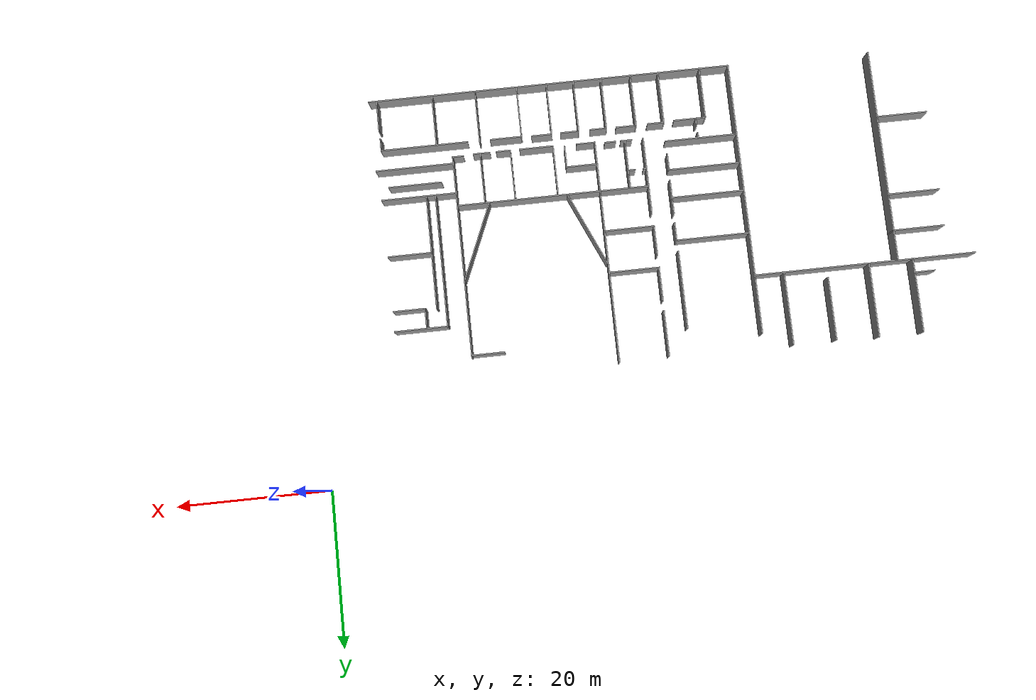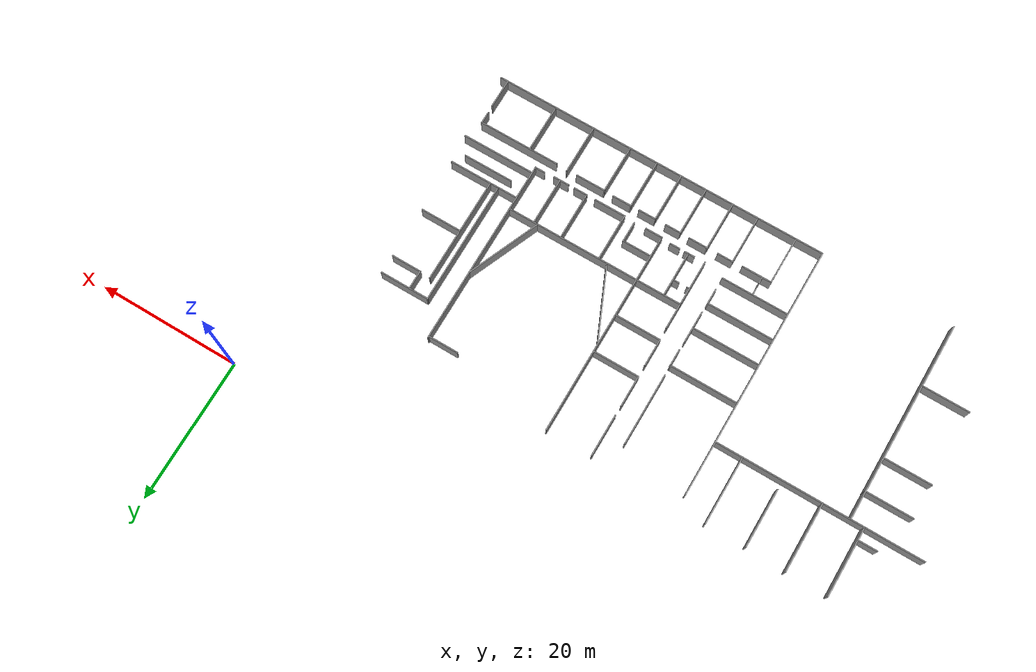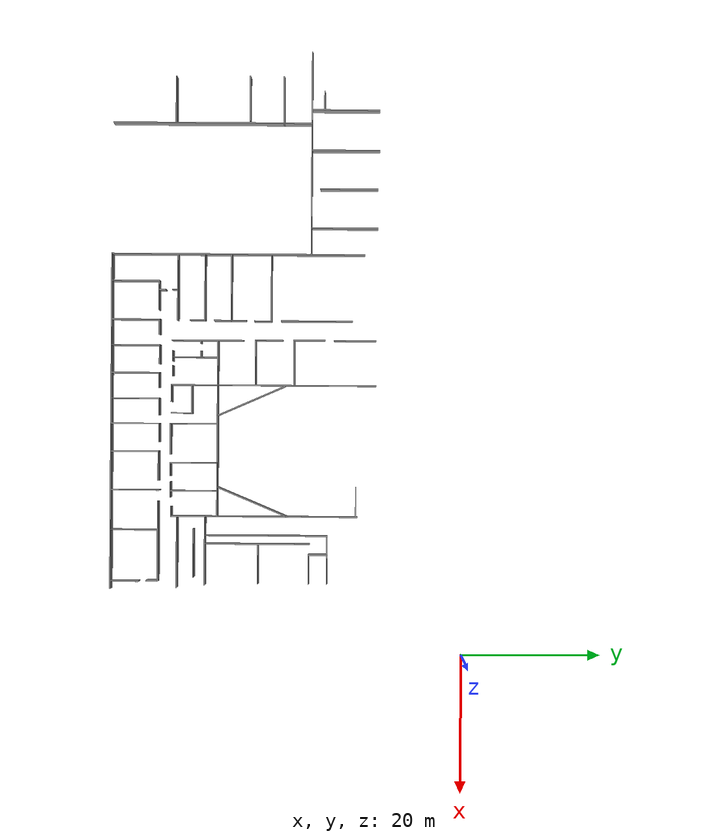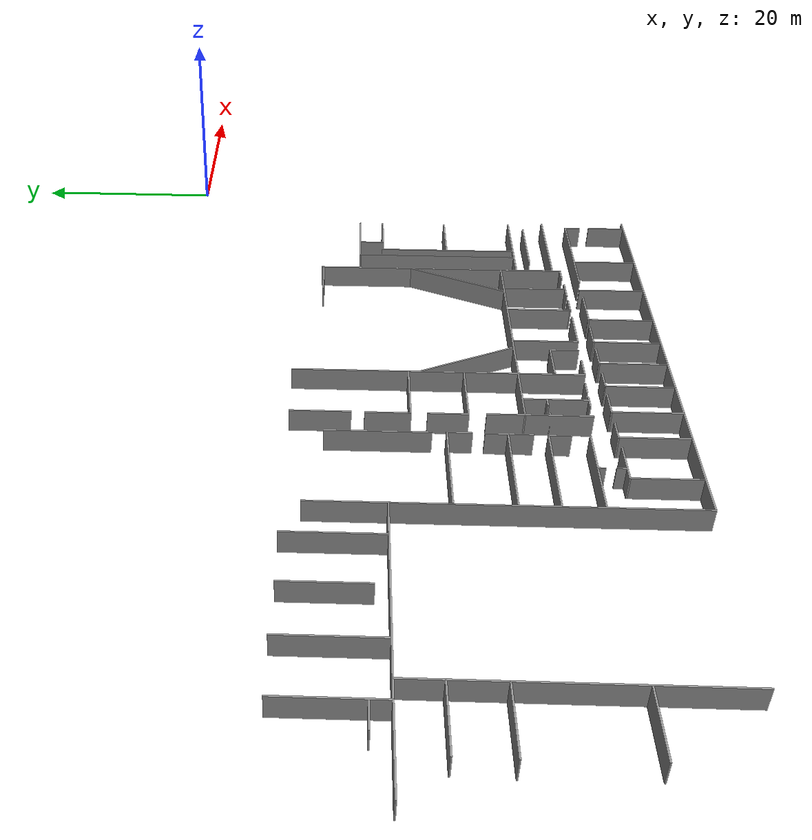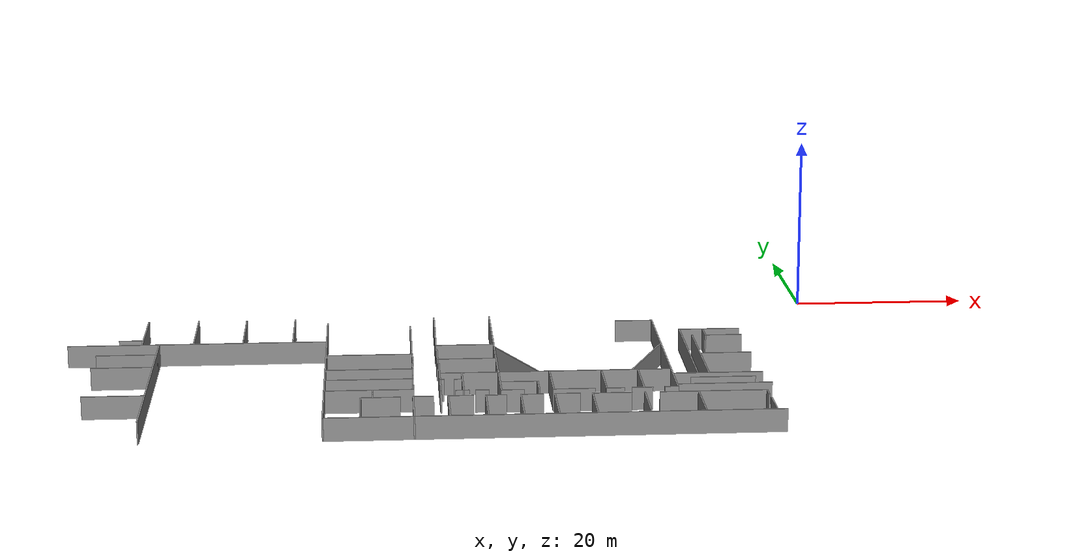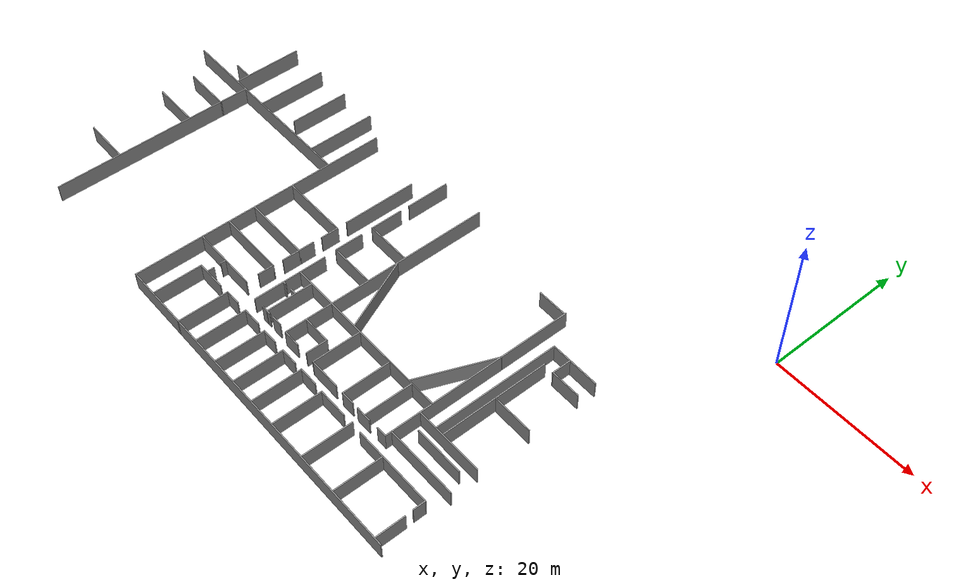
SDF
<sdf version="1.6">
 <model name="ensta_portes">
  <pose>1.28297 8.11006 0 0 -0 0</pose>
  <link name="Wall_1002">
   <collision name="Wall_1002_Collision">
    <geometry><box><size>2.75 0.15 2.5</size></box></geometry>
    <pose>0 0 1.25 0 -0 0</pose>
   </collision>
   <visual name="Wall_1002_Visual">
    <pose>0 0 1.25 0 -0 0</pose>
    <geometry><box><size>2.75 0.15 2.5</size></box></geometry>
    <material>
     <script><uri>file://media/materials/scripts/gazebo.material</uri><name>Gazebo/Grey</name></script>
     <ambient>1 1 1 1</ambient>
    </material>
    <meta><layer>0</layer></meta>
   </visual>
   <pose>-15.6191 -28.8016 0 0 -0 -1.5708</pose>
  </link>
  <link name="Wall_1003">
   <collision name="Wall_1003_Collision">
    <geometry><box><size>4.25 0.15 2.5</size></box></geometry>
    <pose>0 0 1.25 0 -0 0</pose>
   </collision>
   <visual name="Wall_1003_Visual">
    <pose>0 0 1.25 0 -0 0</pose>
    <geometry><box><size>4.25 0.15 2.5</size></box></geometry>
    <material>
     <script><uri>file://media/materials/scripts/gazebo.material</uri><name>Gazebo/Grey</name></script>
     <ambient>1 1 1 1</ambient>
    </material>
    <meta><layer>0</layer></meta>
   </visual>
   <pose>-13.5691 -30.1016 0 0 -0 0</pose>
  </link>
  <link name="Wall_1005">
   <collision name="Wall_1005_Collision">
    <geometry><box><size>15 0.15 2.5</size></box></geometry>
    <pose>0 0 1.25 0 -0 0</pose>
   </collision>
   <visual name="Wall_1005_Visual">
    <pose>0 0 1.25 0 -0 0</pose>
    <geometry><box><size>15 0.15 2.5</size></box></geometry>
    <material>
     <script><uri>file://media/materials/scripts/gazebo.material</uri><name>Gazebo/Grey</name></script>
     <ambient>1 1 1 1</ambient>
    </material>
    <meta><layer>0</layer></meta>
   </visual>
   <pose>-17.1319 -37.4221 0 0 -0 -1.5708</pose>
  </link>
  <link name="Wall_1007">
   <collision name="Wall_1007_Collision">
    <geometry><box><size>5.75 0.15 2.5</size></box></geometry>
    <pose>0 0 1.25 0 -0 0</pose>
   </collision>
   <visual name="Wall_1007_Visual">
    <pose>0 0 1.25 0 -0 0</pose>
    <geometry><box><size>5.75 0.15 2.5</size></box></geometry>
    <material>
     <script><uri>file://media/materials/scripts/gazebo.material</uri><name>Gazebo/Grey</name></script>
     <ambient>1 1 1 1</ambient>
    </material>
    <meta><layer>0</layer></meta>
   </visual>
   <pose>-14.2919 -37.3571 0 0 -0 0</pose>
  </link>
  <link name="Wall_727">
   <collision name="Wall_727_Collision">
    <geometry><box><size>28.4266 0.15 2.5</size></box></geometry>
    <pose>0 0 1.25 0 -0 0</pose>
   </collision>
   <visual name="Wall_727_Visual">
    <pose>0 0 1.25 0 -0 0</pose>
    <geometry><box><size>28.4266 0.15 2.5</size></box></geometry>
    <material>
     <script><uri>file://media/materials/scripts/gazebo.material</uri><name>Gazebo/Grey</name></script>
     <ambient>1 1 1 1</ambient>
    </material>
    <meta><layer>0</layer></meta>
   </visual>
   <pose>-77.3207 -44.1207 0 0 -0 -1.57066</pose>
  </link>
  <link name="Wall_729">
   <collision name="Wall_729_Collision">
    <geometry><box><size>6.65037 0.15 2.5</size></box></geometry>
    <pose>0 0 1.25 0 -0 0</pose>
   </collision>
   <visual name="Wall_729_Visual">
    <pose>0 0 1.25 0 -0 0</pose>
    <geometry><box><size>6.65037 0.15 2.5</size></box></geometry>
    <material>
     <script><uri>file://media/materials/scripts/gazebo.material</uri><name>Gazebo/Grey</name></script>
     <ambient>1 1 1 1</ambient>
    </material>
    <meta><layer>0</layer></meta>
   </visual>
   <pose>-80.6286 -49.3721 0 0 -0 -0.001766</pose>
  </link>
  <link name="Wall_736">
   <collision name="Wall_736_Collision">
    <geometry><box><size>29 0.15 2.5</size></box></geometry>
    <pose>0 0 1.25 0 -0 0</pose>
   </collision>
   <visual name="Wall_736_Visual">
    <pose>0 0 1.25 0 -0 0</pose>
    <geometry><box><size>29 0.15 2.5</size></box></geometry>
    <material>
     <script><uri>file://media/materials/scripts/gazebo.material</uri><name>Gazebo/Grey</name></script>
     <ambient>1 1 1 1</ambient>
    </material>
    <meta><layer>0</layer></meta>
   </visual>
   <pose>-73.0127 -29.9586 0 0 -0 0</pose>
  </link>
  <link name="Wall_738">
   <collision name="Wall_738_Collision">
    <geometry><box><size>6.75 0.15 2.5</size></box></geometry>
    <pose>0 0 1.25 0 -0 0</pose>
   </collision>
   <visual name="Wall_738_Visual">
    <pose>0 0 1.25 0 -0 0</pose>
    <geometry><box><size>6.75 0.15 2.5</size></box></geometry>
    <material>
     <script><uri>file://media/materials/scripts/gazebo.material</uri><name>Gazebo/Grey</name></script>
     <ambient>1 1 1 1</ambient>
    </material>
    <meta><layer>0</layer></meta>
   </visual>
   <pose>-80.6011 -33.9517 0 0 -0 0</pose>
  </link>
  <link name="Wall_742">
   <collision name="Wall_742_Collision">
    <geometry><box><size>6.75 0.15 2.5</size></box></geometry>
    <pose>0 0 1.25 0 -0 0</pose>
   </collision>
   <visual name="Wall_742_Visual">
    <pose>0 0 1.25 0 -0 0</pose>
    <geometry><box><size>6.75 0.15 2.5</size></box></geometry>
    <material>
     <script><uri>file://media/materials/scripts/gazebo.material</uri><name>Gazebo/Grey</name></script>
     <ambient>1 1 1 1</ambient>
    </material>
    <meta><layer>0</layer></meta>
   </visual>
   <pose>-80.6714 -38.8007 0 0 -0 0</pose>
  </link>
  <link name="Wall_765">
   <collision name="Wall_765_Collision">
    <geometry><box><size>2.75 0.15 2.5</size></box></geometry>
    <pose>0 0 1.25 0 -0 0</pose>
   </collision>
   <visual name="Wall_765_Visual">
    <pose>0 0 1.25 0 -0 0</pose>
    <geometry><box><size>2.75 0.15 2.5</size></box></geometry>
    <material>
     <script><uri>file://media/materials/scripts/gazebo.material</uri><name>Gazebo/Grey</name></script>
     <ambient>1 1 1 1</ambient>
    </material>
    <meta><layer>0</layer></meta>
   </visual>
   <pose>-80.5761 -28.1565 0 0 -0 0</pose>
  </link>
  <link name="Wall_769">
   <collision name="Wall_769_Collision">
    <geometry><box><size>9.75 0.15 2.5</size></box></geometry>
    <pose>0 0 1.25 0 -0 0</pose>
   </collision>
   <visual name="Wall_769_Visual">
    <pose>0 0 1.25 0 -0 0</pose>
    <geometry><box><size>9.75 0.15 2.5</size></box></geometry>
    <material>
     <script><uri>file://media/materials/scripts/gazebo.material</uri><name>Gazebo/Grey</name></script>
     <ambient>1 1 1 1</ambient>
    </material>
    <meta><layer>0</layer></meta>
   </visual>
   <pose>-79.2555 -25.1298 0 0 -0 -1.5708</pose>
  </link>
  <link name="Wall_773">
   <collision name="Wall_773_Collision">
    <geometry><box><size>9.75 0.15 2.5</size></box></geometry>
    <pose>0 0 1.25 0 -0 0</pose>
   </collision>
   <visual name="Wall_773_Visual">
    <pose>0 0 1.25 0 -0 0</pose>
    <geometry><box><size>9.75 0.15 2.5</size></box></geometry>
    <material>
     <script><uri>file://media/materials/scripts/gazebo.material</uri><name>Gazebo/Grey</name></script>
     <ambient>1 1 1 1</ambient>
    </material>
    <meta><layer>0</layer></meta>
   </visual>
   <pose>-73.4988 -25.1185 0 0 -0 -1.5708</pose>
  </link>
  <link name="Wall_776">
   <collision name="Wall_776_Collision">
    <geometry><box><size>8.25 0.15 2.5</size></box></geometry>
    <pose>0 0 1.25 0 -0 0</pose>
   </collision>
   <visual name="Wall_776_Visual">
    <pose>0 0 1.25 0 -0 0</pose>
    <geometry><box><size>8.25 0.15 2.5</size></box></geometry>
    <material>
     <script><uri>file://media/materials/scripts/gazebo.material</uri><name>Gazebo/Grey</name></script>
     <ambient>1 1 1 1</ambient>
    </material>
    <meta><layer>0</layer></meta>
   </visual>
   <pose>-67.9646 -24.5784 0 0 -0 -1.5708</pose>
  </link>
  <link name="Wall_779">
   <collision name="Wall_779_Collision">
    <geometry><box><size>9.5 0.15 2.5</size></box></geometry>
    <pose>0 0 1.25 0 -0 0</pose>
   </collision>
   <visual name="Wall_779_Visual">
    <pose>0 0 1.25 0 -0 0</pose>
    <geometry><box><size>9.5 0.15 2.5</size></box></geometry>
    <material>
     <script><uri>file://media/materials/scripts/gazebo.material</uri><name>Gazebo/Grey</name></script>
     <ambient>1 1 1 1</ambient>
    </material>
    <meta><layer>0</layer></meta>
   </visual>
   <pose>-62.3729 -25.1334 0 0 -0 -1.5708</pose>
  </link>
  <link name="Wall_783">
   <collision name="Wall_783_Collision">
    <geometry><box><size>36.25 0.15 2.5</size></box></geometry>
    <pose>0 0 1.25 0 -0 0</pose>
   </collision>
   <visual name="Wall_783_Visual">
    <pose>0 0 1.25 0 -0 0</pose>
    <geometry><box><size>36.25 0.15 2.5</size></box></geometry>
    <material>
     <script><uri>file://media/materials/scripts/gazebo.material</uri><name>Gazebo/Grey</name></script>
     <ambient>1 1 1 1</ambient>
    </material>
    <meta><layer>0</layer></meta>
   </visual>
   <pose>-58.5675 -40.3795 0 0 -0 -1.5708</pose>
  </link>
  <link name="Wall_787">
   <collision name="Wall_787_Collision">
    <geometry><box><size>48 0.15 2.5</size></box></geometry>
    <pose>0 0 1.25 0 -0 0</pose>
   </collision>
   <visual name="Wall_787_Visual">
    <pose>0 0 1.25 0 -0 0</pose>
    <geometry><box><size>48 0.15 2.5</size></box></geometry>
    <material>
     <script><uri>file://media/materials/scripts/gazebo.material</uri><name>Gazebo/Grey</name></script>
     <ambient>1 1 1 1</ambient>
    </material>
    <meta><layer>0</layer></meta>
   </visual>
   <pose>-34.6425 -58.4295 0 0 -0 0</pose>
  </link>
  <link name="Wall_805">
   <collision name="Wall_805_Collision">
    <geometry><box><size>10.25 0.15 2.5</size></box></geometry>
    <pose>0 0 1.25 0 -0 0</pose>
   </collision>
   <visual name="Wall_805_Visual">
    <pose>0 0 1.25 0 -0 0</pose>
    <geometry><box><size>10.25 0.15 2.5</size></box></geometry>
    <material>
     <script><uri>file://media/materials/scripts/gazebo.material</uri><name>Gazebo/Grey</name></script>
     <ambient>1 1 1 1</ambient>
    </material>
    <meta><layer>0</layer></meta>
   </visual>
   <pose>-49.0648 -29.1062 0 0 -0 -1.5708</pose>
  </link>
  <link name="Wall_807">
   <collision name="Wall_807_Collision">
    <geometry><box><size>9.5 0.15 2.5</size></box></geometry>
    <pose>0 0 1.25 0 -0 0</pose>
   </collision>
   <visual name="Wall_807_Visual">
    <pose>0 0 1.25 0 -0 0</pose>
    <geometry><box><size>9.5 0.15 2.5</size></box></geometry>
    <material>
     <script><uri>file://media/materials/scripts/gazebo.material</uri><name>Gazebo/Grey</name></script>
     <ambient>1 1 1 1</ambient>
    </material>
    <meta><layer>0</layer></meta>
   </visual>
   <pose>-53.6975 -35.6148 0 0 -0 0</pose>
  </link>
  <link name="Wall_808">
   <collision name="Wall_808_Collision">
    <geometry><box><size>2.5 0.15 2.5</size></box></geometry>
    <pose>0 0 1.25 0 -0 0</pose>
   </collision>
   <visual name="Wall_808_Visual">
    <pose>0 0 1.25 0 -0 0</pose>
    <geometry><box><size>2.5 0.15 2.5</size></box></geometry>
    <material>
     <script><uri>file://media/materials/scripts/gazebo.material</uri><name>Gazebo/Grey</name></script>
     <ambient>1 1 1 1</ambient>
    </material>
    <meta><layer>0</layer></meta>
   </visual>
   <pose>-49.0225 -36.7898 0 0 -0 -1.5708</pose>
  </link>
  <link name="Wall_810">
   <collision name="Wall_810_Collision">
    <geometry><box><size>9.5 0.15 2.5</size></box></geometry>
    <pose>0 0 1.25 0 -0 0</pose>
   </collision>
   <visual name="Wall_810_Visual">
    <pose>0 0 1.25 0 -0 0</pose>
    <geometry><box><size>9.5 0.15 2.5</size></box></geometry>
    <material>
     <script><uri>file://media/materials/scripts/gazebo.material</uri><name>Gazebo/Grey</name></script>
     <ambient>1 1 1 1</ambient>
    </material>
    <meta><layer>0</layer></meta>
   </visual>
   <pose>-53.7584 -41.3333 0 0 -0 0</pose>
  </link>
  <link name="Wall_811">
   <collision name="Wall_811_Collision">
    <geometry><box><size>2.25 0.15 2.5</size></box></geometry>
    <pose>0 0 1.25 0 -0 0</pose>
   </collision>
   <visual name="Wall_811_Visual">
    <pose>0 0 1.25 0 -0 0</pose>
    <geometry><box><size>2.25 0.15 2.5</size></box></geometry>
    <material>
     <script><uri>file://media/materials/scripts/gazebo.material</uri><name>Gazebo/Grey</name></script>
     <ambient>1 1 1 1</ambient>
    </material>
    <meta><layer>0</layer></meta>
   </visual>
   <pose>-49.0834 -40.2833 0 0 -0 1.5708</pose>
  </link>
  <link name="Wall_813">
   <collision name="Wall_813_Collision">
    <geometry><box><size>2.5 0.15 2.5</size></box></geometry>
    <pose>0 0 1.25 0 -0 0</pose>
   </collision>
   <visual name="Wall_813_Visual">
    <pose>0 0 1.25 0 -0 0</pose>
    <geometry><box><size>2.5 0.15 2.5</size></box></geometry>
    <material>
     <script><uri>file://media/materials/scripts/gazebo.material</uri><name>Gazebo/Grey</name></script>
     <ambient>1 1 1 1</ambient>
    </material>
    <meta><layer>0</layer></meta>
   </visual>
   <pose>-49.0834 -42.5083 0 0 -0 -1.5708</pose>
  </link>
  <link name="Wall_815">
   <collision name="Wall_815_Collision">
    <geometry><box><size>9.5 0.15 2.5</size></box></geometry>
    <pose>0 0 1.25 0 -0 0</pose>
   </collision>
   <visual name="Wall_815_Visual">
    <pose>0 0 1.25 0 -0 0</pose>
    <geometry><box><size>9.5 0.15 2.5</size></box></geometry>
    <material>
     <script><uri>file://media/materials/scripts/gazebo.material</uri><name>Gazebo/Grey</name></script>
     <ambient>1 1 1 1</ambient>
    </material>
    <meta><layer>0</layer></meta>
   </visual>
   <pose>-53.8192 -45.1051 0 0 -0 0</pose>
  </link>
  <link name="Wall_816">
   <collision name="Wall_816_Collision">
    <geometry><box><size>2.25 0.15 2.5</size></box></geometry>
    <pose>0 0 1.25 0 -0 0</pose>
   </collision>
   <visual name="Wall_816_Visual">
    <pose>0 0 1.25 0 -0 0</pose>
    <geometry><box><size>2.25 0.15 2.5</size></box></geometry>
    <material>
     <script><uri>file://media/materials/scripts/gazebo.material</uri><name>Gazebo/Grey</name></script>
     <ambient>1 1 1 1</ambient>
    </material>
    <meta><layer>0</layer></meta>
   </visual>
   <pose>-49.1442 -46.1551 0 0 -0 -1.5708</pose>
  </link>
  <link name="Wall_818">
   <collision name="Wall_818_Collision">
    <geometry><box><size>9.5 0.15 2.5</size></box></geometry>
    <pose>0 0 1.25 0 -0 0</pose>
   </collision>
   <visual name="Wall_818_Visual">
    <pose>0 0 1.25 0 -0 0</pose>
    <geometry><box><size>9.5 0.15 2.5</size></box></geometry>
    <material>
     <script><uri>file://media/materials/scripts/gazebo.material</uri><name>Gazebo/Grey</name></script>
     <ambient>1 1 1 1</ambient>
    </material>
    <meta><layer>0</layer></meta>
   </visual>
   <pose>-53.8192 -48.9985 0 0 -0 0</pose>
  </link>
  <link name="Wall_820">
   <collision name="Wall_820_Collision">
    <geometry><box><size>6.75 0.15 2.5</size></box></geometry>
    <pose>0 0 1.25 0 -0 0</pose>
   </collision>
   <visual name="Wall_820_Visual">
    <pose>0 0 1.25 0 -0 0</pose>
    <geometry><box><size>6.75 0.15 2.5</size></box></geometry>
    <material>
     <script><uri>file://media/materials/scripts/gazebo.material</uri><name>Gazebo/Grey</name></script>
     <ambient>1 1 1 1</ambient>
    </material>
    <meta><layer>0</layer></meta>
   </visual>
   <pose>-54.7224 -54.9752 0 0 -0 -1.5708</pose>
  </link>
  <link name="Wall_822">
   <collision name="Wall_822_Collision">
    <geometry><box><size>4.25 0.15 2.5</size></box></geometry>
    <pose>0 0 1.25 0 -0 0</pose>
   </collision>
   <visual name="Wall_822_Visual">
    <pose>0 0 1.25 0 -0 0</pose>
    <geometry><box><size>4.25 0.15 2.5</size></box></geometry>
    <material>
     <script><uri>file://media/materials/scripts/gazebo.material</uri><name>Gazebo/Grey</name></script>
     <ambient>1 1 1 1</ambient>
    </material>
    <meta><layer>0</layer></meta>
   </visual>
   <pose>-52.6724 -51.6752 0 0 -0 0</pose>
  </link>
  <link name="Wall_824">
   <collision name="Wall_824_Collision">
    <geometry><box><size>0.75 0.15 2.5</size></box></geometry>
    <pose>0 0 1.25 0 -0 0</pose>
   </collision>
   <visual name="Wall_824_Visual">
    <pose>0 0 1.25 0 -0 0</pose>
    <geometry><box><size>0.75 0.15 2.5</size></box></geometry>
    <material>
     <script><uri>file://media/materials/scripts/gazebo.material</uri><name>Gazebo/Grey</name></script>
     <ambient>1 1 1 1</ambient>
    </material>
    <meta><layer>0</layer></meta>
   </visual>
   <pose>-53.4763 -49.3751 0 0 -0 -1.5708</pose>
  </link>
  <link name="Wall_826">
   <collision name="Wall_826_Collision">
    <geometry><box><size>1 0.15 2.5</size></box></geometry>
    <pose>0 0 1.25 0 -0 0</pose>
   </collision>
   <visual name="Wall_826_Visual">
    <pose>0 0 1.25 0 -0 0</pose>
    <geometry><box><size>1 0.15 2.5</size></box></geometry>
    <material>
     <script><uri>file://media/materials/scripts/gazebo.material</uri><name>Gazebo/Grey</name></script>
     <ambient>1 1 1 1</ambient>
    </material>
    <meta><layer>0</layer></meta>
   </visual>
   <pose>-53.4417 -51.1884 0 0 -0 -1.5708</pose>
  </link>
  <link name="Wall_828">
   <collision name="Wall_828_Collision">
    <geometry><box><size>7 0.15 2.5</size></box></geometry>
    <pose>0 0 1.25 0 -0 0</pose>
   </collision>
   <visual name="Wall_828_Visual">
    <pose>0 0 1.25 0 -0 0</pose>
    <geometry><box><size>7 0.15 2.5</size></box></geometry>
    <material>
     <script><uri>file://media/materials/scripts/gazebo.material</uri><name>Gazebo/Grey</name></script>
     <ambient>1 1 1 1</ambient>
    </material>
    <meta><layer>0</layer></meta>
   </visual>
   <pose>-49.1921 -55.0108 0 0 -0 -1.5708</pose>
  </link>
  <link name="Wall_830">
   <collision name="Wall_830_Collision">
    <geometry><box><size>2.25 0.15 2.5</size></box></geometry>
    <pose>0 0 1.25 0 -0 0</pose>
   </collision>
   <visual name="Wall_830_Visual">
    <pose>0 0 1.25 0 -0 0</pose>
    <geometry><box><size>2.25 0.15 2.5</size></box></geometry>
    <material>
     <script><uri>file://media/materials/scripts/gazebo.material</uri><name>Gazebo/Grey</name></script>
     <ambient>1 1 1 1</ambient>
    </material>
    <meta><layer>0</layer></meta>
   </visual>
   <pose>-48.1421 -51.5858 0 0 -0 0</pose>
  </link>
  <link name="Wall_832">
   <collision name="Wall_832_Collision">
    <geometry><box><size>7 0.15 2.5</size></box></geometry>
    <pose>0 0 1.25 0 -0 0</pose>
   </collision>
   <visual name="Wall_832_Visual">
    <pose>0 0 1.25 0 -0 0</pose>
    <geometry><box><size>7 0.15 2.5</size></box></geometry>
    <material>
     <script><uri>file://media/materials/scripts/gazebo.material</uri><name>Gazebo/Grey</name></script>
     <ambient>1 1 1 1</ambient>
    </material>
    <meta><layer>0</layer></meta>
   </visual>
   <pose>-45.5061 -54.9718 0 0 -0 -1.5708</pose>
  </link>
  <link name="Wall_834">
   <collision name="Wall_834_Collision">
    <geometry><box><size>2.75 0.15 2.5</size></box></geometry>
    <pose>0 0 1.25 0 -0 0</pose>
   </collision>
   <visual name="Wall_834_Visual">
    <pose>0 0 1.25 0 -0 0</pose>
    <geometry><box><size>2.75 0.15 2.5</size></box></geometry>
    <material>
     <script><uri>file://media/materials/scripts/gazebo.material</uri><name>Gazebo/Grey</name></script>
     <ambient>1 1 1 1</ambient>
    </material>
    <meta><layer>0</layer></meta>
   </visual>
   <pose>-44.2061 -51.5468 0 0 -0 0</pose>
  </link>
  <link name="Wall_836">
   <collision name="Wall_836_Collision">
    <geometry><box><size>6.98593 0.15 2.5</size></box></geometry>
    <pose>0 0 1.25 0 -0 0</pose>
   </collision>
   <visual name="Wall_836_Visual">
    <pose>0 0 1.25 0 -0 0</pose>
    <geometry><box><size>6.98593 0.15 2.5</size></box></geometry>
    <material>
     <script><uri>file://media/materials/scripts/gazebo.material</uri><name>Gazebo/Grey</name></script>
     <ambient>1 1 1 1</ambient>
    </material>
    <meta><layer>0</layer></meta>
   </visual>
   <pose>-41.5717 -55.0102 0 0 -0 -1.57288</pose>
  </link>
  <link name="Wall_838">
   <collision name="Wall_838_Collision">
    <geometry><box><size>2.25 0.15 2.5</size></box></geometry>
    <pose>0 0 1.25 0 -0 0</pose>
   </collision>
   <visual name="Wall_838_Visual">
    <pose>0 0 1.25 0 -0 0</pose>
    <geometry><box><size>2.25 0.15 2.5</size></box></geometry>
    <material>
     <script><uri>file://media/materials/scripts/gazebo.material</uri><name>Gazebo/Grey</name></script>
     <ambient>1 1 1 1</ambient>
    </material>
    <meta><layer>0</layer></meta>
   </visual>
   <pose>-40.5146 -51.5922 0 0 -0 0</pose>
  </link>
  <link name="Wall_840">
   <collision name="Wall_840_Collision">
    <geometry><box><size>6.9844 0.15 2.5</size></box></geometry>
    <pose>0 0 1.25 0 -0 0</pose>
   </collision>
   <visual name="Wall_840_Visual">
    <pose>0 0 1.25 0 -0 0</pose>
    <geometry><box><size>6.9844 0.15 2.5</size></box></geometry>
    <material>
     <script><uri>file://media/materials/scripts/gazebo.material</uri><name>Gazebo/Grey</name></script>
     <ambient>1 1 1 1</ambient>
    </material>
    <meta><layer>0</layer></meta>
   </visual>
   <pose>-37.8913 -54.9959 0 0 -0 -1.57178</pose>
  </link>
  <link name="Wall_842">
   <collision name="Wall_842_Collision">
    <geometry><box><size>2.5 0.15 2.5</size></box></geometry>
    <pose>0 0 1.25 0 -0 0</pose>
   </collision>
   <visual name="Wall_842_Visual">
    <pose>0 0 1.25 0 -0 0</pose>
    <geometry><box><size>2.5 0.15 2.5</size></box></geometry>
    <material>
     <script><uri>file://media/materials/scripts/gazebo.material</uri><name>Gazebo/Grey</name></script>
     <ambient>1 1 1 1</ambient>
    </material>
    <meta><layer>0</layer></meta>
   </visual>
   <pose>-36.713 -51.5787 0 0 -0 0</pose>
  </link>
  <link name="Wall_844">
   <collision name="Wall_844_Collision">
    <geometry><box><size>7 0.15 2.5</size></box></geometry>
    <pose>0 0 1.25 0 -0 0</pose>
   </collision>
   <visual name="Wall_844_Visual">
    <pose>0 0 1.25 0 -0 0</pose>
    <geometry><box><size>7 0.15 2.5</size></box></geometry>
    <material>
     <script><uri>file://media/materials/scripts/gazebo.material</uri><name>Gazebo/Grey</name></script>
     <ambient>1 1 1 1</ambient>
    </material>
    <meta><layer>0</layer></meta>
   </visual>
   <pose>-34.3007 -54.9678 0 0 -0 -1.5708</pose>
  </link>
  <link name="Wall_846">
   <collision name="Wall_846_Collision">
    <geometry><box><size>2.75 0.15 2.5</size></box></geometry>
    <pose>0 0 1.25 0 -0 0</pose>
   </collision>
   <visual name="Wall_846_Visual">
    <pose>0 0 1.25 0 -0 0</pose>
    <geometry><box><size>2.75 0.15 2.5</size></box></geometry>
    <material>
     <script><uri>file://media/materials/scripts/gazebo.material</uri><name>Gazebo/Grey</name></script>
     <ambient>1 1 1 1</ambient>
    </material>
    <meta><layer>0</layer></meta>
   </visual>
   <pose>-33.0007 -51.5428 0 0 -0 0</pose>
  </link>
  <link name="Wall_848">
   <collision name="Wall_848_Collision">
    <geometry><box><size>6.9319 0.15 2.5</size></box></geometry>
    <pose>0 0 1.25 0 -0 0</pose>
   </collision>
   <visual name="Wall_848_Visual">
    <pose>0 0 1.25 0 -0 0</pose>
    <geometry><box><size>6.9319 0.15 2.5</size></box></geometry>
    <material>
     <script><uri>file://media/materials/scripts/gazebo.material</uri><name>Gazebo/Grey</name></script>
     <ambient>1 1 1 1</ambient>
    </material>
    <meta><layer>0</layer></meta>
   </visual>
   <pose>-30.3158 -55.0221 0 0 -0 -1.5708</pose>
  </link>
  <link name="Wall_850">
   <collision name="Wall_850_Collision">
    <geometry><box><size>4.25 0.15 2.5</size></box></geometry>
    <pose>0 0 1.25 0 -0 0</pose>
   </collision>
   <visual name="Wall_850_Visual">
    <pose>0 0 1.25 0 -0 0</pose>
    <geometry><box><size>4.25 0.15 2.5</size></box></geometry>
    <material>
     <script><uri>file://media/materials/scripts/gazebo.material</uri><name>Gazebo/Grey</name></script>
     <ambient>1 1 1 1</ambient>
    </material>
    <meta><layer>0</layer></meta>
   </visual>
   <pose>-28.2658 -51.6312 0 0 -0 0</pose>
  </link>
  <link name="Wall_852">
   <collision name="Wall_852_Collision">
    <geometry><box><size>7 0.15 2.5</size></box></geometry>
    <pose>0 0 1.25 0 -0 0</pose>
   </collision>
   <visual name="Wall_852_Visual">
    <pose>0 0 1.25 0 -0 0</pose>
    <geometry><box><size>7 0.15 2.5</size></box></geometry>
    <material>
     <script><uri>file://media/materials/scripts/gazebo.material</uri><name>Gazebo/Grey</name></script>
     <ambient>1 1 1 1</ambient>
    </material>
    <meta><layer>0</layer></meta>
   </visual>
   <pose>-24.782 -54.9209 0 0 -0 -1.5708</pose>
  </link>
  <link name="Wall_854">
   <collision name="Wall_854_Collision">
    <geometry><box><size>11.5 0.15 2.5</size></box></geometry>
    <pose>0 0 1.25 0 -0 0</pose>
   </collision>
   <visual name="Wall_854_Visual">
    <pose>0 0 1.25 0 -0 0</pose>
    <geometry><box><size>11.5 0.15 2.5</size></box></geometry>
    <material>
     <script><uri>file://media/materials/scripts/gazebo.material</uri><name>Gazebo/Grey</name></script>
     <ambient>1 1 1 1</ambient>
    </material>
    <meta><layer>0</layer></meta>
   </visual>
   <pose>-17.4679 -51.6613 0 0 -0 0</pose>
  </link>
  <link name="Wall_856">
   <collision name="Wall_856_Collision">
    <geometry><box><size>6.75 0.15 2.5</size></box></geometry>
    <pose>0 0 1.25 0 -0 0</pose>
   </collision>
   <visual name="Wall_856_Visual">
    <pose>0 0 1.25 0 -0 0</pose>
    <geometry><box><size>6.75 0.15 2.5</size></box></geometry>
    <material>
     <script><uri>file://media/materials/scripts/gazebo.material</uri><name>Gazebo/Grey</name></script>
     <ambient>1 1 1 1</ambient>
    </material>
    <meta><layer>0</layer></meta>
   </visual>
   <pose>-19.0828 -54.9928 0 0 -0 1.5708</pose>
  </link>
  <link name="Wall_858">
   <collision name="Wall_858_Collision">
    <geometry><box><size>1.75 0.15 2.5</size></box></geometry>
    <pose>0 0 1.25 0 -0 0</pose>
   </collision>
   <visual name="Wall_858_Visual">
    <pose>0 0 1.25 0 -0 0</pose>
    <geometry><box><size>1.75 0.15 2.5</size></box></geometry>
    <material>
     <script><uri>file://media/materials/scripts/gazebo.material</uri><name>Gazebo/Grey</name></script>
     <ambient>1 1 1 1</ambient>
    </material>
    <meta><layer>0</layer></meta>
   </visual>
   <pose>-11.7929 -52.4613 0 0 -0 -1.5708</pose>
  </link>
  <link name="Wall_861">
   <collision name="Wall_861_Collision">
    <geometry><box><size>4 0.15 2.5</size></box></geometry>
    <pose>0 0 1.25 0 -0 0</pose>
   </collision>
   <visual name="Wall_861_Visual">
    <pose>0 0 1.25 0 -0 0</pose>
    <geometry><box><size>4 0.15 2.5</size></box></geometry>
    <material>
     <script><uri>file://media/materials/scripts/gazebo.material</uri><name>Gazebo/Grey</name></script>
     <ambient>1 1 1 1</ambient>
    </material>
    <meta><layer>0</layer></meta>
   </visual>
   <pose>-11.7295 -56.3532 0 0 -0 -1.5708</pose>
  </link>
  <link name="Wall_935">
   <collision name="Wall_935_Collision">
    <geometry><box><size>6 0.15 2.5</size></box></geometry>
    <pose>0 0 1.25 0 -0 0</pose>
   </collision>
   <visual name="Wall_935_Visual">
    <pose>0 0 1.25 0 -0 0</pose>
    <geometry><box><size>6 0.15 2.5</size></box></geometry>
    <material>
     <script><uri>file://media/materials/scripts/gazebo.material</uri><name>Gazebo/Grey</name></script>
     <ambient>1 1 1 1</ambient>
    </material>
    <meta><layer>0</layer></meta>
   </visual>
   <pose>-46.2815 -23.6192 0 0 -0 -1.5708</pose>
  </link>
  <link name="Wall_937">
   <collision name="Wall_937_Collision">
    <geometry><box><size>4.5 0.15 2.5</size></box></geometry>
    <pose>0 0 1.25 0 -0 0</pose>
   </collision>
   <visual name="Wall_937_Visual">
    <pose>0 0 1.25 0 -0 0</pose>
    <geometry><box><size>4.5 0.15 2.5</size></box></geometry>
    <material>
     <script><uri>file://media/materials/scripts/gazebo.material</uri><name>Gazebo/Grey</name></script>
     <ambient>1 1 1 1</ambient>
    </material>
    <meta><layer>0</layer></meta>
   </visual>
   <pose>-46.3152 -30.1242 0 0 -0 -1.5708</pose>
  </link>
  <link name="Wall_938">
   <collision name="Wall_938_Collision">
    <geometry><box><size>6.5 0.15 2.5</size></box></geometry>
    <pose>0 0 1.25 0 -0 0</pose>
   </collision>
   <visual name="Wall_938_Visual">
    <pose>0 0 1.25 0 -0 0</pose>
    <geometry><box><size>6.5 0.15 2.5</size></box></geometry>
    <material>
     <script><uri>file://media/materials/scripts/gazebo.material</uri><name>Gazebo/Grey</name></script>
     <ambient>1 1 1 1</ambient>
    </material>
    <meta><layer>0</layer></meta>
   </visual>
   <pose>-43.1402 -32.2992 0 0 -0 0</pose>
  </link>
  <link name="Wall_940">
   <collision name="Wall_940_Collision">
    <geometry><box><size>22.75 0.15 2.5</size></box></geometry>
    <pose>0 0 1.25 0 -0 0</pose>
   </collision>
   <visual name="Wall_940_Visual">
    <pose>0 0 1.25 0 -0 0</pose>
    <geometry><box><size>22.75 0.15 2.5</size></box></geometry>
    <material>
     <script><uri>file://media/materials/scripts/gazebo.material</uri><name>Gazebo/Grey</name></script>
     <ambient>1 1 1 1</ambient>
    </material>
    <meta><layer>0</layer></meta>
   </visual>
   <pose>-39.8423 -31.9299 0 0 -0 -1.5708</pose>
  </link>
  <link name="Wall_942">
   <collision name="Wall_942_Collision">
    <geometry><box><size>4 0.15 2.5</size></box></geometry>
    <pose>0 0 1.25 0 -0 0</pose>
   </collision>
   <visual name="Wall_942_Visual">
    <pose>0 0 1.25 0 -0 0</pose>
    <geometry><box><size>4 0.15 2.5</size></box></geometry>
    <material>
     <script><uri>file://media/materials/scripts/gazebo.material</uri><name>Gazebo/Grey</name></script>
     <ambient>1 1 1 1</ambient>
    </material>
    <meta><layer>0</layer></meta>
   </visual>
   <pose>-46.2977 -35.9035 0 0 -0 -1.5708</pose>
  </link>
  <link name="Wall_943">
   <collision name="Wall_943_Collision">
    <geometry><box><size>6.5 0.15 2.5</size></box></geometry>
    <pose>0 0 1.25 0 -0 0</pose>
   </collision>
   <visual name="Wall_943_Visual">
    <pose>0 0 1.25 0 -0 0</pose>
    <geometry><box><size>6.5 0.15 2.5</size></box></geometry>
    <material>
     <script><uri>file://media/materials/scripts/gazebo.material</uri><name>Gazebo/Grey</name></script>
     <ambient>1 1 1 1</ambient>
    </material>
    <meta><layer>0</layer></meta>
   </visual>
   <pose>-43.1227 -37.8285 0 0 -0 0</pose>
  </link>
  <link name="Wall_945">
   <collision name="Wall_945_Collision">
    <geometry><box><size>10.25 0.15 2.5</size></box></geometry>
    <pose>0 0 1.25 0 -0 0</pose>
   </collision>
   <visual name="Wall_945_Visual">
    <pose>0 0 1.25 0 -0 0</pose>
    <geometry><box><size>10.25 0.15 2.5</size></box></geometry>
    <material>
     <script><uri>file://media/materials/scripts/gazebo.material</uri><name>Gazebo/Grey</name></script>
     <ambient>1 1 1 1</ambient>
    </material>
    <meta><layer>0</layer></meta>
   </visual>
   <pose>-46.2177 -44.6685 0 0 -0 -1.5708</pose>
  </link>
  <link name="Wall_947">
   <collision name="Wall_947_Collision">
    <geometry><box><size>25.25 0.15 2.5</size></box></geometry>
    <pose>0 0 1.25 0 -0 0</pose>
   </collision>
   <visual name="Wall_947_Visual">
    <pose>0 0 1.25 0 -0 0</pose>
    <geometry><box><size>25.25 0.15 2.5</size></box></geometry>
    <material>
     <script><uri>file://media/materials/scripts/gazebo.material</uri><name>Gazebo/Grey</name></script>
     <ambient>1 1 1 1</ambient>
    </material>
    <meta><layer>0</layer></meta>
   </visual>
   <pose>-33.6677 -43.2185 0 0 -0 0</pose>
  </link>
  <link name="Wall_949">
   <collision name="Wall_949_Collision">
    <geometry><box><size>6.5 0.15 2.5</size></box></geometry>
    <pose>0 0 1.25 0 -0 0</pose>
   </collision>
   <visual name="Wall_949_Visual">
    <pose>0 0 1.25 0 -0 0</pose>
    <geometry><box><size>6.5 0.15 2.5</size></box></geometry>
    <material>
     <script><uri>file://media/materials/scripts/gazebo.material</uri><name>Gazebo/Grey</name></script>
     <ambient>1 1 1 1</ambient>
    </material>
    <meta><layer>0</layer></meta>
   </visual>
   <pose>-43.8177 -46.4835 0 0 -0 1.5708</pose>
  </link>
  <link name="Wall_951">
   <collision name="Wall_951_Collision">
    <geometry><box><size>0.5 0.15 2.5</size></box></geometry>
    <pose>0 0 1.25 0 -0 0</pose>
   </collision>
   <visual name="Wall_951_Visual">
    <pose>0 0 1.25 0 -0 0</pose>
    <geometry><box><size>0.5 0.15 2.5</size></box></geometry>
    <material>
     <script><uri>file://media/materials/scripts/gazebo.material</uri><name>Gazebo/Grey</name></script>
     <ambient>1 1 1 1</ambient>
    </material>
    <meta><layer>0</layer></meta>
   </visual>
   <pose>-46.0427 -45.6185 0 0 -0 0</pose>
  </link>
  <link name="Wall_953">
   <collision name="Wall_953_Collision">
    <geometry><box><size>1 0.15 2.5</size></box></geometry>
    <pose>0 0 1.25 0 -0 0</pose>
   </collision>
   <visual name="Wall_953_Visual">
    <pose>0 0 1.25 0 -0 0</pose>
    <geometry><box><size>1 0.15 2.5</size></box></geometry>
    <material>
     <script><uri>file://media/materials/scripts/gazebo.material</uri><name>Gazebo/Grey</name></script>
     <ambient>1 1 1 1</ambient>
    </material>
    <meta><layer>0</layer></meta>
   </visual>
   <pose>-44.2443 -45.6055 0 0 -0 0</pose>
  </link>
  <link name="Wall_955">
   <collision name="Wall_955_Collision">
    <geometry><box><size>1.5 0.15 2.5</size></box></geometry>
    <pose>0 0 1.25 0 -0 0</pose>
   </collision>
   <visual name="Wall_955_Visual">
    <pose>0 0 1.25 0 -0 0</pose>
    <geometry><box><size>1.5 0.15 2.5</size></box></geometry>
    <material>
     <script><uri>file://media/materials/scripts/gazebo.material</uri><name>Gazebo/Grey</name></script>
     <ambient>1 1 1 1</ambient>
    </material>
    <meta><layer>0</layer></meta>
   </visual>
   <pose>-43.9943 -49.6558 0 0 -0 0</pose>
  </link>
  <link name="Wall_957">
   <collision name="Wall_957_Collision">
    <geometry><box><size>6.75 0.15 2.5</size></box></geometry>
    <pose>0 0 1.25 0 -0 0</pose>
   </collision>
   <visual name="Wall_957_Visual">
    <pose>0 0 1.25 0 -0 0</pose>
    <geometry><box><size>6.75 0.15 2.5</size></box></geometry>
    <material>
     <script><uri>file://media/materials/scripts/gazebo.material</uri><name>Gazebo/Grey</name></script>
     <ambient>1 1 1 1</ambient>
    </material>
    <meta><layer>0</layer></meta>
   </visual>
   <pose>-39.8423 -46.5299 0 0 -0 -1.5708</pose>
  </link>
  <link name="Wall_959">
   <collision name="Wall_959_Collision">
    <geometry><box><size>1.5 0.15 2.5</size></box></geometry>
    <pose>0 0 1.25 0 -0 0</pose>
   </collision>
   <visual name="Wall_959_Visual">
    <pose>0 0 1.25 0 -0 0</pose>
    <geometry><box><size>1.5 0.15 2.5</size></box></geometry>
    <material>
     <script><uri>file://media/materials/scripts/gazebo.material</uri><name>Gazebo/Grey</name></script>
     <ambient>1 1 1 1</ambient>
    </material>
    <meta><layer>0</layer></meta>
   </visual>
   <pose>-41.864 -49.6558 0 0 -0 0</pose>
  </link>
  <link name="Wall_961">
   <collision name="Wall_961_Collision">
    <geometry><box><size>2.5 0.15 2.5</size></box></geometry>
    <pose>0 0 1.25 0 -0 0</pose>
   </collision>
   <visual name="Wall_961_Visual">
    <pose>0 0 1.25 0 -0 0</pose>
    <geometry><box><size>2.5 0.15 2.5</size></box></geometry>
    <material>
     <script><uri>file://media/materials/scripts/gazebo.material</uri><name>Gazebo/Grey</name></script>
     <ambient>1 1 1 1</ambient>
    </material>
    <meta><layer>0</layer></meta>
   </visual>
   <pose>-38.6673 -49.8299 0 0 -0 0</pose>
  </link>
  <link name="Wall_963">
   <collision name="Wall_963_Collision">
    <geometry><box><size>4 0.15 2.5</size></box></geometry>
    <pose>0 0 1.25 0 -0 0</pose>
   </collision>
   <visual name="Wall_963_Visual">
    <pose>0 0 1.25 0 -0 0</pose>
    <geometry><box><size>4 0.15 2.5</size></box></geometry>
    <material>
     <script><uri>file://media/materials/scripts/gazebo.material</uri><name>Gazebo/Grey</name></script>
     <ambient>1 1 1 1</ambient>
    </material>
    <meta><layer>0</layer></meta>
   </visual>
   <pose>-37.7472 -46.8942 0 0 -0 0</pose>
  </link>
  <link name="Wall_964">
   <collision name="Wall_964_Collision">
    <geometry><box><size>3 0.15 2.5</size></box></geometry>
    <pose>0 0 1.25 0 -0 0</pose>
   </collision>
   <visual name="Wall_964_Visual">
    <pose>0 0 1.25 0 -0 0</pose>
    <geometry><box><size>3 0.15 2.5</size></box></geometry>
    <material>
     <script><uri>file://media/materials/scripts/gazebo.material</uri><name>Gazebo/Grey</name></script>
     <ambient>1 1 1 1</ambient>
    </material>
    <meta><layer>0</layer></meta>
   </visual>
   <pose>-35.8222 -48.3192 0 0 -0 -1.5708</pose>
  </link>
  <link name="Wall_966">
   <collision name="Wall_966_Collision">
    <geometry><box><size>6.75 0.15 2.5</size></box></geometry>
    <pose>0 0 1.25 0 -0 0</pose>
   </collision>
   <visual name="Wall_966_Visual">
    <pose>0 0 1.25 0 -0 0</pose>
    <geometry><box><size>6.75 0.15 2.5</size></box></geometry>
    <material>
     <script><uri>file://media/materials/scripts/gazebo.material</uri><name>Gazebo/Grey</name></script>
     <ambient>1 1 1 1</ambient>
    </material>
    <meta><layer>0</layer></meta>
   </visual>
   <pose>-34.3069 -46.6173 0 0 -0 -1.5708</pose>
  </link>
  <link name="Wall_967">
   <collision name="Wall_967_Collision">
    <geometry><box><size>4.5 0.15 2.5</size></box></geometry>
    <pose>0 0 1.25 0 -0 0</pose>
   </collision>
   <visual name="Wall_967_Visual">
    <pose>0 0 1.25 0 -0 0</pose>
    <geometry><box><size>4.5 0.15 2.5</size></box></geometry>
    <material>
     <script><uri>file://media/materials/scripts/gazebo.material</uri><name>Gazebo/Grey</name></script>
     <ambient>1 1 1 1</ambient>
    </material>
    <meta><layer>0</layer></meta>
   </visual>
   <pose>-32.1319 -49.9173 0 0 -0 0</pose>
  </link>
  <link name="Wall_969">
   <collision name="Wall_969_Collision">
    <geometry><box><size>6.64827 0.15 2.5</size></box></geometry>
    <pose>0 0 1.25 0 -0 0</pose>
   </collision>
   <visual name="Wall_969_Visual">
    <pose>0 0 1.25 0 -0 0</pose>
    <geometry><box><size>6.64827 0.15 2.5</size></box></geometry>
    <material>
     <script><uri>file://media/materials/scripts/gazebo.material</uri><name>Gazebo/Grey</name></script>
     <ambient>1 1 1 1</ambient>
    </material>
    <meta><layer>0</layer></meta>
   </visual>
   <pose>-28.6691 -46.6716 0 0 -0 -1.56791</pose>
  </link>
  <link name="Wall_970">
   <collision name="Wall_970_Collision">
    <geometry><box><size>1.95506 0.15 2.5</size></box></geometry>
    <pose>0 0 1.25 0 -0 0</pose>
   </collision>
   <visual name="Wall_970_Visual">
    <pose>0 0 1.25 0 -0 0</pose>
    <geometry><box><size>1.95506 0.15 2.5</size></box></geometry>
    <material>
     <script><uri>file://media/materials/scripts/gazebo.material</uri><name>Gazebo/Grey</name></script>
     <ambient>1 1 1 1</ambient>
    </material>
    <meta><layer>0</layer></meta>
   </visual>
   <pose>-27.7575 -49.9208 0 0 -0 0</pose>
  </link>
  <link name="Wall_972">
   <collision name="Wall_972_Collision">
    <geometry><box><size>6.75 0.15 2.5</size></box></geometry>
    <pose>0 0 1.25 0 -0 0</pose>
   </collision>
   <visual name="Wall_972_Visual">
    <pose>0 0 1.25 0 -0 0</pose>
    <geometry><box><size>6.75 0.15 2.5</size></box></geometry>
    <material>
     <script><uri>file://media/materials/scripts/gazebo.material</uri><name>Gazebo/Grey</name></script>
     <ambient>1 1 1 1</ambient>
    </material>
    <meta><layer>0</layer></meta>
   </visual>
   <pose>-24.6858 -46.6075 0 0 -0 -1.5708</pose>
  </link>
  <link name="Wall_974">
   <collision name="Wall_974_Collision">
    <geometry><box><size>2.25 0.15 2.5</size></box></geometry>
    <pose>0 0 1.25 0 -0 0</pose>
   </collision>
   <visual name="Wall_974_Visual">
    <pose>0 0 1.25 0 -0 0</pose>
    <geometry><box><size>2.25 0.15 2.5</size></box></geometry>
    <material>
     <script><uri>file://media/materials/scripts/gazebo.material</uri><name>Gazebo/Grey</name></script>
     <ambient>1 1 1 1</ambient>
    </material>
    <meta><layer>0</layer></meta>
   </visual>
   <pose>-24.8688 -49.91 0 0 -0 0</pose>
  </link>
  <link name="Wall_976">
   <collision name="Wall_976_Collision">
    <geometry><box><size>1.5 0.15 2.5</size></box></geometry>
    <pose>0 0 1.25 0 -0 0</pose>
   </collision>
   <visual name="Wall_976_Visual">
    <pose>0 0 1.25 0 -0 0</pose>
    <geometry><box><size>1.5 0.15 2.5</size></box></geometry>
    <material>
     <script><uri>file://media/materials/scripts/gazebo.material</uri><name>Gazebo/Grey</name></script>
     <ambient>1 1 1 1</ambient>
    </material>
    <meta><layer>0</layer></meta>
   </visual>
   <pose>-21.7238 -49.8106 0 0 -0 0</pose>
  </link>
  <link name="Wall_980">
   <collision name="Wall_980_Collision">
    <geometry><box><size>26.75 0.15 2.5</size></box></geometry>
    <pose>0 0 1.25 0 -0 0</pose>
   </collision>
   <visual name="Wall_980_Visual">
    <pose>0 0 1.25 0 -0 0</pose>
    <geometry><box><size>26.75 0.15 2.5</size></box></geometry>
    <material>
     <script><uri>file://media/materials/scripts/gazebo.material</uri><name>Gazebo/Grey</name></script>
     <ambient>1 1 1 1</ambient>
    </material>
    <meta><layer>0</layer></meta>
   </visual>
   <pose>-21.0488 -36.5106 0 0 -0 1.5708</pose>
  </link>
  <link name="Wall_985">
   <collision name="Wall_985_Collision">
    <geometry><box><size>4.25 0.15 2.5</size></box></geometry>
    <pose>0 0 1.25 0 -0 0</pose>
   </collision>
   <visual name="Wall_985_Visual">
    <pose>0 0 1.25 0 -0 0</pose>
    <geometry><box><size>4.25 0.15 2.5</size></box></geometry>
    <material>
     <script><uri>file://media/materials/scripts/gazebo.material</uri><name>Gazebo/Grey</name></script>
     <ambient>1 1 1 1</ambient>
    </material>
    <meta><layer>0</layer></meta>
   </visual>
   <pose>-23.1896 -23.384 0 0 -0 0</pose>
  </link>
  <link name="Wall_987">
   <collision name="Wall_987_Collision">
    <geometry><box><size>10.5402 0.15 2.5</size></box></geometry>
    <pose>0 0 1.25 0 -0 0</pose>
   </collision>
   <visual name="Wall_987_Visual">
    <pose>0 0 1.25 0 -0 0</pose>
    <geometry><box><size>10.5402 0.15 2.5</size></box></geometry>
    <material>
     <script><uri>file://media/materials/scripts/gazebo.material</uri><name>Gazebo/Grey</name></script>
     <ambient>1 1 1 1</ambient>
    </material>
    <meta><layer>0</layer></meta>
   </visual>
   <pose>-37.6266 -38.3509 0 0 -0 -1.15721</pose>
  </link>
  <link name="Wall_989">
   <collision name="Wall_989_Collision">
    <geometry><box><size>10.907 0.15 2.5</size></box></geometry>
    <pose>0 0 1.25 0 -0 0</pose>
   </collision>
   <visual name="Wall_989_Visual">
    <pose>0 0 1.25 0 -0 0</pose>
    <geometry><box><size>10.907 0.15 2.5</size></box></geometry>
    <material>
     <script><uri>file://media/materials/scripts/gazebo.material</uri><name>Gazebo/Grey</name></script>
     <ambient>1 1 1 1</ambient>
    </material>
    <meta><layer>0</layer></meta>
   </visual>
   <pose>-23.1332 -38.1233 0 0 -0 1.17372</pose>
  </link>
  <link name="Wall_991">
   <collision name="Wall_991_Collision">
    <geometry><box><size>10.25 0.15 2.5</size></box></geometry>
    <pose>0 0 1.25 0 -0 0</pose>
   </collision>
   <visual name="Wall_991_Visual">
    <pose>0 0 1.25 0 -0 0</pose>
    <geometry><box><size>10.25 0.15 2.5</size></box></geometry>
    <material>
     <script><uri>file://media/materials/scripts/gazebo.material</uri><name>Gazebo/Grey</name></script>
     <ambient>1 1 1 1</ambient>
    </material>
    <meta><layer>0</layer></meta>
   </visual>
   <pose>-15.9499 -48.9493 0 0 -0 0</pose>
  </link>
  <link name="Wall_993">
   <collision name="Wall_993_Collision">
    <geometry><box><size>7 0.15 2.5</size></box></geometry>
    <pose>0 0 1.25 0 -0 0</pose>
   </collision>
   <visual name="Wall_993_Visual">
    <pose>0 0 1.25 0 -0 0</pose>
    <geometry><box><size>7 0.15 2.5</size></box></geometry>
    <material>
     <script><uri>file://media/materials/scripts/gazebo.material</uri><name>Gazebo/Grey</name></script>
     <ambient>1 1 1 1</ambient>
    </material>
    <meta><layer>0</layer></meta>
   </visual>
   <pose>-15.801 -46.5841 0 0 -0 0</pose>
  </link>
  <link name="Wall_995">
   <collision name="Wall_995_Collision">
    <geometry><box><size>9.75 0.15 2.5</size></box></geometry>
    <pose>0 0 1.25 0 -0 0</pose>
   </collision>
   <visual name="Wall_995_Visual">
    <pose>0 0 1.25 0 -0 0</pose>
    <geometry><box><size>9.75 0.15 2.5</size></box></geometry>
    <material>
     <script><uri>file://media/materials/scripts/gazebo.material</uri><name>Gazebo/Grey</name></script>
     <ambient>1 1 1 1</ambient>
    </material>
    <meta><layer>0</layer></meta>
   </visual>
   <pose>-16.0956 -44.9493 0 0 -0 0</pose>
  </link>
  <link name="Wall_997">
   <collision name="Wall_997_Collision">
    <geometry><box><size>17.5 0.15 2.5</size></box></geometry>
    <pose>0 0 1.25 0 -0 0</pose>
   </collision>
   <visual name="Wall_997_Visual">
    <pose>0 0 1.25 0 -0 0</pose>
    <geometry><box><size>17.5 0.15 2.5</size></box></geometry>
    <material>
     <script><uri>file://media/materials/scripts/gazebo.material</uri><name>Gazebo/Grey</name></script>
     <ambient>1 1 1 1</ambient>
    </material>
    <meta><layer>0</layer></meta>
   </visual>
   <pose>-18.317 -36.1621 0 0 -0 -1.5708</pose>
  </link>
  <link name="Wall_999">
   <collision name="Wall_999_Collision">
    <geometry><box><size>7 0.15 2.5</size></box></geometry>
    <pose>0 0 1.25 0 -0 0</pose>
   </collision>
   <visual name="Wall_999_Visual">
    <pose>0 0 1.25 0 -0 0</pose>
    <geometry><box><size>7 0.15 2.5</size></box></geometry>
    <material>
     <script><uri>file://media/materials/scripts/gazebo.material</uri><name>Gazebo/Grey</name></script>
     <ambient>1 1 1 1</ambient>
    </material>
    <meta><layer>0</layer></meta>
   </visual>
   <pose>-14.892 -27.4871 0 0 -0 0</pose>
  </link>
  <static>1</static>
 </model>
</sdf>
